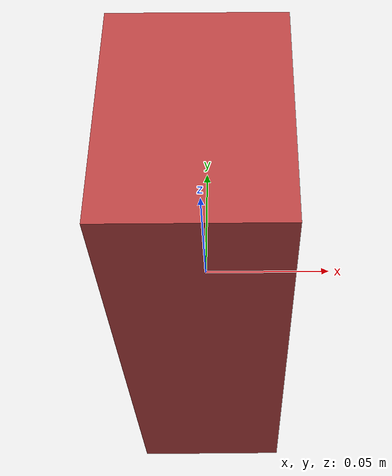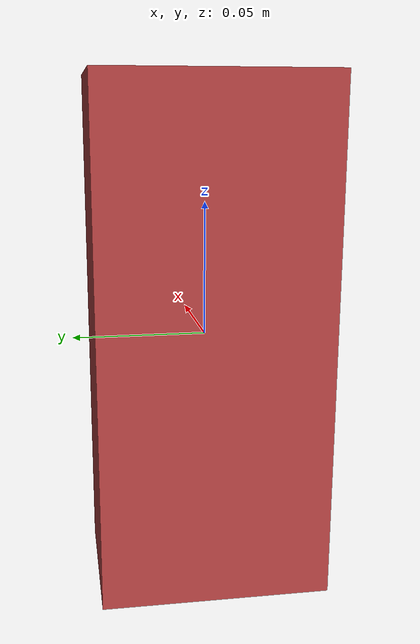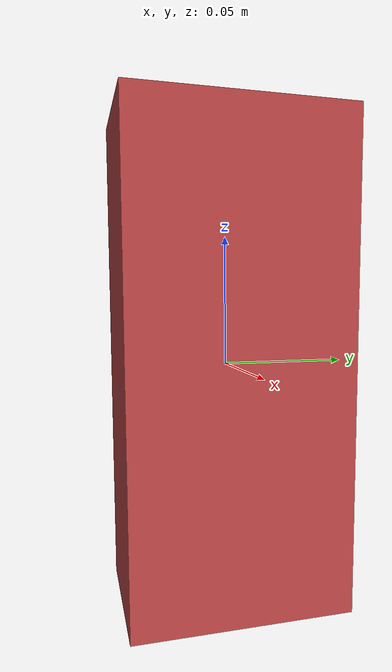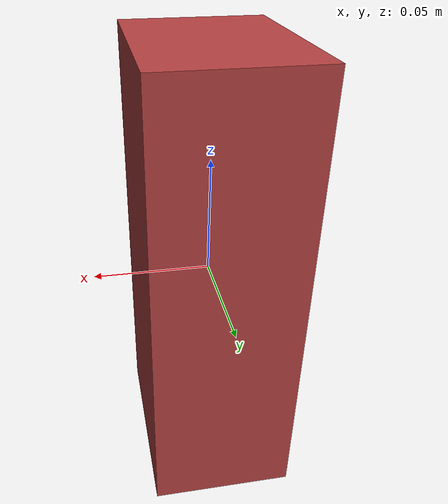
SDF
<?xml version="1.0" ?>
<sdf version='1.6'>
  <model name='brick_heavy'>
    <link name='brick_heavy'>
      <pose frame=''>0 0 0 0 0 0</pose>
      <inertial>
        <pose frame=''>0 0 0 0 0 0</pose>
        <mass>0.5</mass>
        <inertia>
          <ixx>0.0085</ixx>
          <ixy>0</ixy>
          <ixz>0</ixz>
          <iyy>0.0085</iyy>
          <iyz>0</iyz>
          <izz>0.0085</izz>
        </inertia>
      </inertial>
      <collision name='Brick_collision'>
        <pose frame=''>0 0 0 1.5708 1.5708 0</pose>
        <geometry>
          <box>
            <size>0.192 0.062 0.086</size>
          </box>
        </geometry>
        <surface>
          <friction>
            <ode>
              <mu>100</mu>
              <mu2>100</mu2>
              <fdir1>0 0 1</fdir1>
              <slip1>0.0</slip1>
              <slip2>0.0</slip2>
            </ode>
            <torsional>
                <coefficient>1.0</coefficient>
                <surface_radius>0.5</surface_radius>
                <use_patch_radius>false</use_patch_radius>
            </torsional>
          </friction>
          <contact>
            <ode>
              <kp>100000.000000</kp>
              <kd>10.00000</kd>
              <max_vel>2.000000</max_vel>
              <min_depth>0.0001</min_depth>
            </ode>
          </contact>
        </surface>
      </collision>
      <visual name='Brick_visual'>
        <pose frame=''>0 0 0 1.5708 1.5708 0</pose>
        <geometry>
          <box>
            <size>0.192 0.062 0.086</size>
          </box>
        </geometry>
        <material>
          <ambient>0.698 0.25 0.25 1</ambient>
          <diffuse>0.698 0.25 0.25 1</diffuse>
          <specular>0.1 0.1 0.1 1</specular>
          <emissive>0 0 0 0</emissive>
        </material>
      </visual>
    </link>
  </model>
</sdf>
